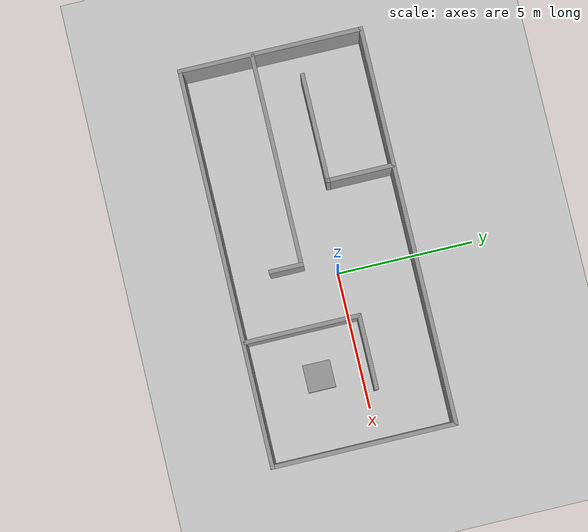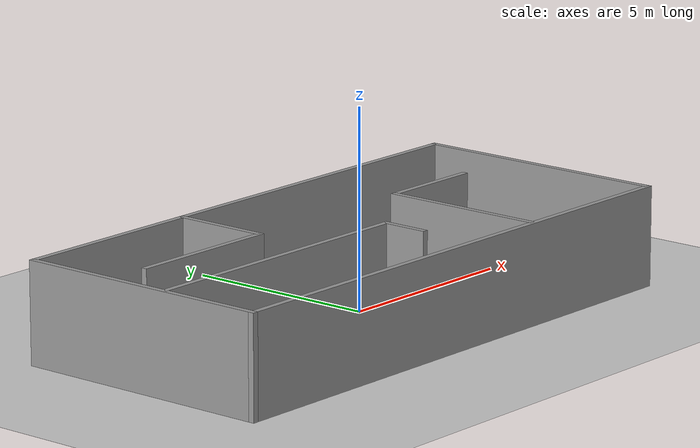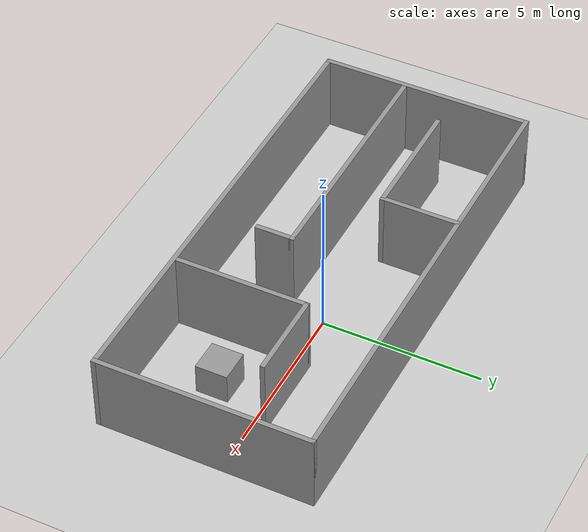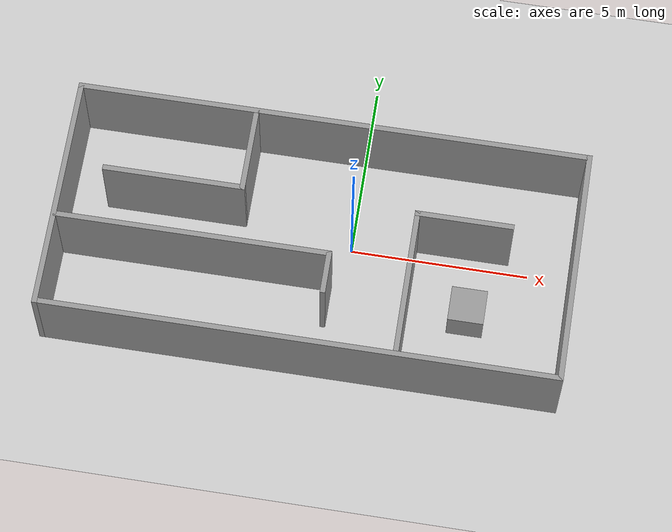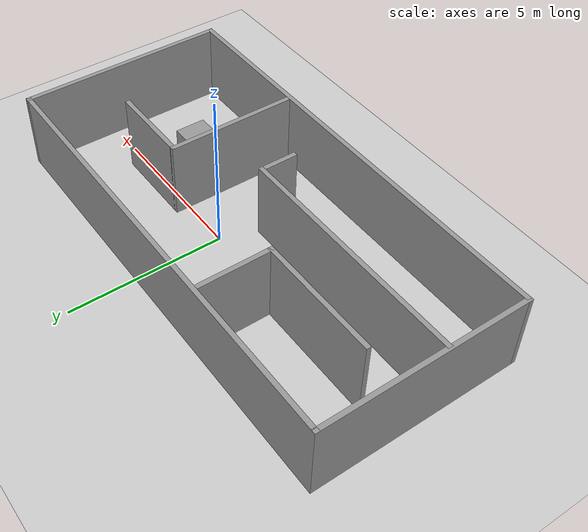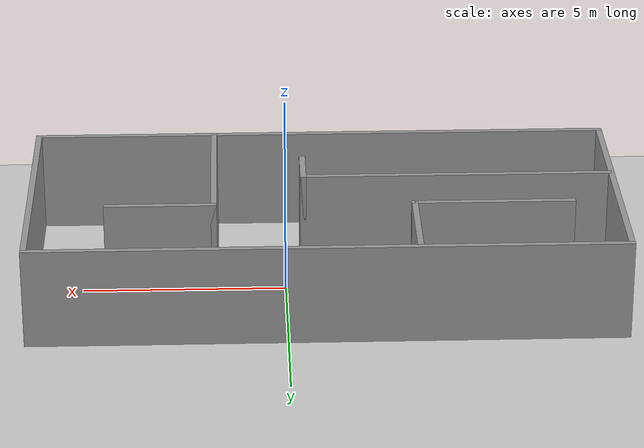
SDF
<sdf version="1.7">
 <world name="default">
  <light name="sun" type="directional">
   <pose>0 0 10 0 -0 0</pose>
   <diffuse>0.8 0.8 0.8 1</diffuse>
   <specular>0.2 0.2 0.2 1</specular>
   <attenuation>
    <range>1000</range>
    <constant>0.9</constant>
    <linear>0.01</linear>
    <quadratic>0.001</quadratic>
   </attenuation>
   <direction>-0.5 0.1 -0.9</direction>
   <spot><inner_angle>0</inner_angle><outer_angle>0</outer_angle><falloff>0</falloff></spot>
  </light>
  <model name="ground_plane">
   <static>1</static>
   <link name="link">
    <collision name="collision">
     <geometry><plane><normal>0 0 1</normal><size>100 100</size></plane></geometry>
     <surface>
      <contact><collide_bitmask>65535</collide_bitmask></contact>
      <friction><ode><mu>100</mu><mu2>50</mu2></ode></friction>
     </surface>
    </collision>
    <visual name="visual">
     <cast_shadows>0</cast_shadows>
     <geometry><plane><normal>0 0 1</normal><size>100 100</size></plane></geometry>
     <material>
      <script><uri>file://media/materials/scripts/gazebo.material</uri><name>Gazebo/Grey</name></script>
     </material>
    </visual>
   </link>
  </model>
  <gravity>0 0 -9.8</gravity>
  <magnetic_field>6e-06 2.3e-05 -4.2e-05</magnetic_field>
  <atmosphere type="adiabatic"/>
  <physics type="ode">
   <max_step_size>0.001</max_step_size>
   <real_time_factor>1</real_time_factor>
   <real_time_update_rate>1000</real_time_update_rate>
  </physics>
  <scene><ambient>0.4 0.4 0.4 1</ambient><background>0.7 0.7 0.7 1</background><shadows>1</shadows></scene>
  <audio><device>default</device></audio>
  <spherical_coordinates>
   <surface_model>EARTH_WGS84</surface_model>
   <latitude_deg>0</latitude_deg>
   <longitude_deg>0</longitude_deg>
   <elevation>0</elevation>
   <heading_deg>0</heading_deg>
  </spherical_coordinates>
  <model name="room">
   <pose>-0.95409 -0.525534 0 0 -0 0</pose>
   <link name="Wall_14">
    <collision name="Wall_14_Collision">
     <geometry><box><size>6.75 0.15 2.5</size></box></geometry>
     <pose>0 0 1.25 0 -0 0</pose>
    </collision>
    <visual name="Wall_14_Visual">
     <pose>0 0 1.25 0 -0 0</pose>
     <geometry><box><size>6.75 0.15 2.5</size></box></geometry>
     <material>
      <script><uri>file://media/materials/scripts/gazebo.material</uri><name>Gazebo/Grey</name></script>
      <ambient>1 1 1 1</ambient>
     </material>
     <meta><layer>0</layer></meta>
    </visual>
    <pose>7.175 0 0 0 -0 -1.5708</pose>
   </link>
   <link name="Wall_15">
    <collision name="Wall_15_Collision">
     <geometry><box><size>14.5 0.15 2.5</size></box></geometry>
     <pose>0 0 1.25 0 -0 0</pose>
    </collision>
    <visual name="Wall_15_Visual">
     <pose>0 0 1.25 0 -0 0</pose>
     <geometry><box><size>14.5 0.15 2.5</size></box></geometry>
     <material>
      <script><uri>file://media/materials/scripts/gazebo.material</uri><name>Gazebo/Grey</name></script>
      <ambient>1 1 1 1</ambient>
     </material>
     <meta><layer>0</layer></meta>
    </visual>
    <pose>0 -3.3 0 0 -0 3.14159</pose>
   </link>
   <link name="Wall_16">
    <collision name="Wall_16_Collision">
     <geometry><box><size>6.75 0.15 2.5</size></box></geometry>
     <pose>0 0 1.25 0 -0 0</pose>
    </collision>
    <visual name="Wall_16_Visual">
     <pose>0 0 1.25 0 -0 0</pose>
     <geometry><box><size>6.75 0.15 2.5</size></box></geometry>
     <material>
      <script><uri>file://media/materials/scripts/gazebo.material</uri><name>Gazebo/Grey</name></script>
      <ambient>1 1 1 1</ambient>
     </material>
     <meta><layer>0</layer></meta>
    </visual>
    <pose>-7.175 0 0 0 -0 1.5708</pose>
   </link>
   <link name="Wall_18">
    <collision name="Wall_18_Collision">
     <geometry><box><size>14.5 0.15 2.5</size></box></geometry>
     <pose>0 0 1.25 0 -0 0</pose>
    </collision>
    <visual name="Wall_18_Visual">
     <pose>0 0 1.25 0 -0 0</pose>
     <geometry><box><size>14.5 0.15 2.5</size></box></geometry>
     <material>
      <script><uri>file://media/materials/scripts/gazebo.material</uri><name>Gazebo/Grey</name></script>
      <ambient>1 1 1 1</ambient>
     </material>
     <meta><layer>0</layer></meta>
    </visual>
    <pose>0 3.3 0 0 -0 0</pose>
   </link>
   <link name="Wall_20">
    <collision name="Wall_20_Collision">
     <geometry><box><size>2.5 0.15 2.5</size></box></geometry>
     <pose>0 0 1.25 0 -0 0</pose>
    </collision>
    <visual name="Wall_20_Visual">
     <pose>0 0 1.25 0 -0 0</pose>
     <geometry><box><size>2.5 0.15 2.5</size></box></geometry>
     <material>
      <script><uri>file://media/materials/scripts/gazebo.material</uri><name>Gazebo/Grey</name></script>
      <ambient>1 1 1 1</ambient>
     </material>
     <meta><layer>0</layer></meta>
    </visual>
    <pose>-2.18205 2.08001 0 0 -0 -1.5708</pose>
   </link>
   <link name="Wall_21">
    <collision name="Wall_21_Collision">
     <geometry><box><size>4 0.15 2.5</size></box></geometry>
     <pose>0 0 1.25 0 -0 0</pose>
    </collision>
    <visual name="Wall_21_Visual">
     <pose>0 0 1.25 0 -0 0</pose>
     <geometry><box><size>4 0.15 2.5</size></box></geometry>
     <material>
      <script><uri>file://media/materials/scripts/gazebo.material</uri><name>Gazebo/Grey</name></script>
      <ambient>1 1 1 1</ambient>
     </material>
     <meta><layer>0</layer></meta>
    </visual>
    <pose>-4.10705 0.905012 0 0 -0 3.14159</pose>
   </link>
   <link name="Wall_23">
    <collision name="Wall_23_Collision">
     <geometry><box><size>7.75 0.15 2.5</size></box></geometry>
     <pose>0 0 1.25 0 -0 0</pose>
    </collision>
    <visual name="Wall_23_Visual">
     <pose>0 0 1.25 0 -0 0</pose>
     <geometry><box><size>7.75 0.15 2.5</size></box></geometry>
     <material>
      <script><uri>file://media/materials/scripts/gazebo.material</uri><name>Gazebo/Grey</name></script>
      <ambient>1 1 1 1</ambient>
     </material>
     <meta><layer>0</layer></meta>
    </visual>
    <pose>-3.30708 -0.685009 0 0 -0 0</pose>
   </link>
   <link name="Wall_27">
    <collision name="Wall_27_Collision">
     <geometry><box><size>1.25 0.15 2.5</size></box></geometry>
     <pose>0 0 1.25 0 -0 0</pose>
    </collision>
    <visual name="Wall_27_Visual">
     <pose>0 0 1.25 0 -0 0</pose>
     <geometry><box><size>1.25 0.15 2.5</size></box></geometry>
     <material>
      <script><uri>file://media/materials/scripts/gazebo.material</uri><name>Gazebo/Grey</name></script>
      <ambient>1 1 1 1</ambient>
     </material>
     <meta><layer>0</layer></meta>
    </visual>
    <pose>0.492921 -1.23501 0 0 -0 -1.5708</pose>
   </link>
   <link name="Wall_29">
    <collision name="Wall_29_Collision">
     <geometry><box><size>4.25 0.15 2.5</size></box></geometry>
     <pose>0 0 1.25 0 -0 0</pose>
    </collision>
    <visual name="Wall_29_Visual">
     <pose>0 0 1.25 0 -0 0</pose>
     <geometry><box><size>4.25 0.15 2.5</size></box></geometry>
     <material>
      <script><uri>file://media/materials/scripts/gazebo.material</uri><name>Gazebo/Grey</name></script>
      <ambient>1 1 1 1</ambient>
     </material>
     <meta><layer>0</layer></meta>
    </visual>
    <pose>2.7078 -1.16788 0 0 -0 1.5708</pose>
   </link>
   <link name="Wall_30">
    <collision name="Wall_30_Collision">
     <geometry><box><size>2.75 0.15 2.5</size></box></geometry>
     <pose>0 0 1.25 0 -0 0</pose>
    </collision>
    <visual name="Wall_30_Visual">
     <pose>0 0 1.25 0 -0 0</pose>
     <geometry><box><size>2.75 0.15 2.5</size></box></geometry>
     <material>
      <script><uri>file://media/materials/scripts/gazebo.material</uri><name>Gazebo/Grey</name></script>
      <ambient>1 1 1 1</ambient>
     </material>
     <meta><layer>0</layer></meta>
    </visual>
    <pose>4.0078 0.88212 0 0 -0 0</pose>
   </link>
   <static>1</static>
  </model>
  <model name="unit_box">
   <pose>3.47241 -1.51264 0.499995 0 -1e-05 0</pose>
   <link name="link">
    <inertial>
     <mass>1</mass>
     <inertia>
      <ixx>0.166667</ixx>
      <ixy>0</ixy>
      <ixz>0</ixz>
      <iyy>0.166667</iyy>
      <iyz>0</iyz>
      <izz>0.166667</izz>
     </inertia>
    </inertial>
    <collision name="collision"><geometry><box><size>1 1 1</size></box></geometry></collision>
    <visual name="visual">
     <geometry><box><size>1 1 1</size></box></geometry>
     <material>
      <script><name>Gazebo/Grey</name><uri>file://media/materials/scripts/gazebo.material</uri></script>
     </material>
    </visual>
   </link>
  </model>
 </world>
</sdf>
